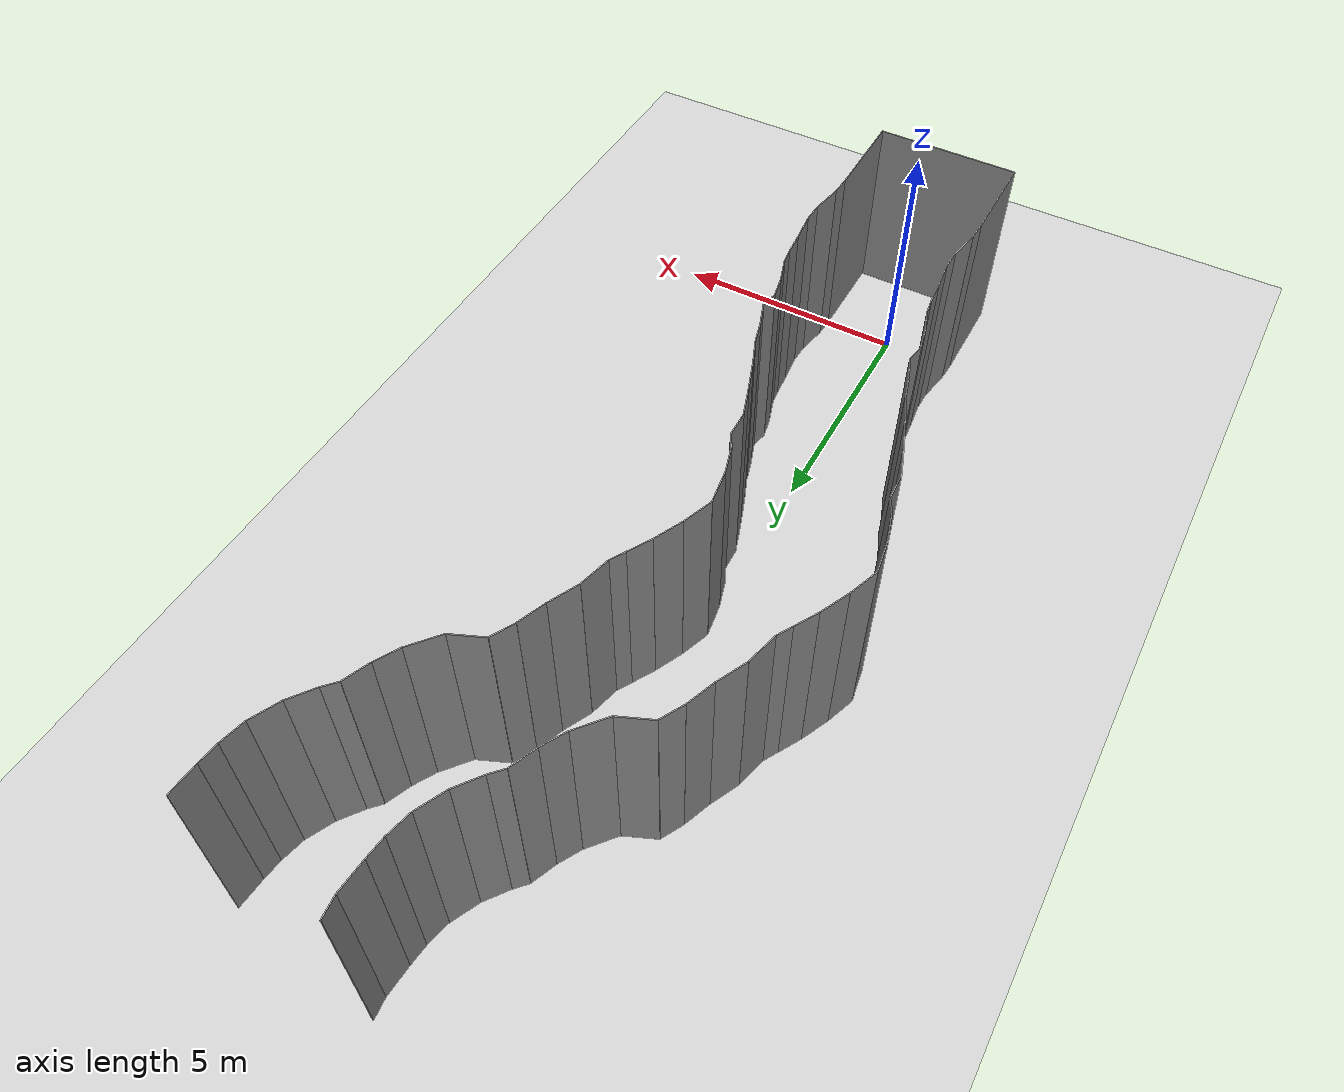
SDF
<sdf version="1.6">
 <world name="default">
  <model name="ground_plane">
   <static>1</static>
   <link name="link">
    <collision name="collision">
     <geometry><plane><normal>0 0 1</normal><size>200 200</size></plane></geometry>
     <surface><friction><ode><mu>100</mu><mu2>50</mu2></ode></friction></surface>
    </collision>
    <visual name="visual">
     <cast_shadows>0</cast_shadows>
     <geometry><plane><normal>0 0 1</normal><size>200 200</size></plane></geometry>
     <material>
      <script><uri>file://media/materials/scripts/gazebo.material</uri><name>Gazebo/Grey</name></script>
     </material>
    </visual>
   </link>
   <pose>0 100 0 0 -0 0</pose>
  </model>
  <model name="wall_back">
   <static>1</static>
   <pose>0.0 -2 2 0.0 0 0.0</pose>
   <link name="link">
    <collision name="collision"><geometry><box><size>3 0.02 4</size></box></geometry></collision>
    <visual name="visual">
     <material>
      <script><name>Gazebo/Grey</name><uri>file://media/materials/scripts/gazebo.material</uri></script>
     </material>
     <geometry><box><size>3 0.02 4</size></box></geometry>
    </visual>
   </link>
  </model>
  <model name="wall_left">
   <static>1</static>
   <pose>1.5 -1 2 0 0 0.00</pose>
   <link name="link">
    <collision name="collision"><geometry><box><size>0.02 2 4</size></box></geometry></collision>
    <visual name="visual">
     <material>
      <script><name>Gazebo/Grey</name><uri>file://media/materials/scripts/gazebo.material</uri></script>
     </material>
     <geometry><box><size>0.02 2 4</size></box></geometry>
    </visual>
   </link>
  </model>
  <model name="wall_right">
   <static>1</static>
   <pose>-1.5 -1 2 0 0 0.00</pose>
   <link name="link">
    <collision name="collision"><geometry><box><size>0.02 2 4</size></box></geometry></collision>
    <visual name="visual">
     <material>
      <script><name>Gazebo/Grey</name><uri>file://media/materials/scripts/gazebo.material</uri></script>
     </material>
     <geometry><box><size>0.02 2 4</size></box></geometry>
    </visual>
   </link>
  </model>
  <model name="wall_0">
   <static>1</static>
   <pose>-1.489518586047968 0.20049732943710094 2 0 0 -0.05222953051110134</pose>
   <link name="link">
    <collision name="collision"><geometry><box><size>0.02 0.401542222686 4</size></box></geometry></collision>
    <visual name="visual">
     <material>
      <script><name>Gazebo/Grey</name><uri>file://media/materials/scripts/gazebo.material</uri></script>
     </material>
     <geometry><box><size>0.02 0.401542222686 4</size></box></geometry>
    </visual>
   </link>
  </model>
  <model name="wall_1">
   <static>1</static>
   <pose>1.510481413952032 0.20049732943710094 2 0 0 -0.05222953051110134</pose>
   <link name="link">
    <collision name="collision"><geometry><box><size>0.02 0.401542222686 4</size></box></geometry></collision>
    <visual name="visual">
     <material>
      <script><name>Gazebo/Grey</name><uri>file://media/materials/scripts/gazebo.material</uri></script>
     </material>
     <geometry><box><size>0.02 0.401542222686 4</size></box></geometry>
    </visual>
   </link>
  </model>
  <model name="wall_2">
   <static>1</static>
   <pose>-1.4214829470044996 0.7288020010732138 2 0 0 -0.17380190108897955</pose>
   <link name="link">
    <collision name="collision"><geometry><box><size>0.02 0.665642974651 4</size></box></geometry></collision>
    <visual name="visual">
     <material>
      <script><name>Gazebo/Grey</name><uri>file://media/materials/scripts/gazebo.material</uri></script>
     </material>
     <geometry><box><size>0.02 0.665642974651 4</size></box></geometry>
    </visual>
   </link>
  </model>
  <model name="wall_3">
   <static>1</static>
   <pose>1.5785170529955004 0.7288020010732138 2 0 0 -0.17380190108897955</pose>
   <link name="link">
    <collision name="collision"><geometry><box><size>0.02 0.665642974651 4</size></box></geometry></collision>
    <visual name="visual">
     <material>
      <script><name>Gazebo/Grey</name><uri>file://media/materials/scripts/gazebo.material</uri></script>
     </material>
     <geometry><box><size>0.02 0.665642974651 4</size></box></geometry>
    </visual>
   </link>
  </model>
  <model name="wall_4">
   <static>1</static>
   <pose>-1.3579543316731462 1.2718780024738132 2 0 0 -0.027746059586998134</pose>
   <link name="link">
    <collision name="collision"><geometry><box><size>0.02 0.430703094826 4</size></box></geometry></collision>
    <visual name="visual">
     <material>
      <script><name>Gazebo/Grey</name><uri>file://media/materials/scripts/gazebo.material</uri></script>
     </material>
     <geometry><box><size>0.02 0.430703094826 4</size></box></geometry>
    </visual>
   </link>
  </model>
  <model name="wall_5">
   <static>1</static>
   <pose>1.6420456683268538 1.2718780024738132 2 0 0 -0.027746059586998134</pose>
   <link name="link">
    <collision name="collision"><geometry><box><size>0.02 0.430703094826 4</size></box></geometry></collision>
    <visual name="visual">
     <material>
      <script><name>Gazebo/Grey</name><uri>file://media/materials/scripts/gazebo.material</uri></script>
     </material>
     <geometry><box><size>0.02 0.430703094826 4</size></box></geometry>
    </visual>
   </link>
  </model>
  <model name="wall_6">
   <static>1</static>
   <pose>-1.3885365490897117 1.8003926404126556 2 0 0 0.11617703816787787</pose>
   <link name="link">
    <collision name="collision"><geometry><box><size>0.02 0.630743779227 4</size></box></geometry></collision>
    <visual name="visual">
     <material>
      <script><name>Gazebo/Grey</name><uri>file://media/materials/scripts/gazebo.material</uri></script>
     </material>
     <geometry><box><size>0.02 0.630743779227 4</size></box></geometry>
    </visual>
   </link>
  </model>
  <model name="wall_7">
   <static>1</static>
   <pose>1.6114634509102883 1.8003926404126556 2 0 0 0.11617703816787787</pose>
   <link name="link">
    <collision name="collision"><geometry><box><size>0.02 0.630743779227 4</size></box></geometry></collision>
    <visual name="visual">
     <material>
      <script><name>Gazebo/Grey</name><uri>file://media/materials/scripts/gazebo.material</uri></script>
     </material>
     <geometry><box><size>0.02 0.630743779227 4</size></box></geometry>
    </visual>
   </link>
  </model>
  <model name="wall_8">
   <static>1</static>
   <pose>-1.4458201575018677 2.353512467075582 2 0 0 0.08619383034046935</pose>
   <link name="link">
    <collision name="collision"><geometry><box><size>0.02 0.481535342333 4</size></box></geometry></collision>
    <visual name="visual">
     <material>
      <script><name>Gazebo/Grey</name><uri>file://media/materials/scripts/gazebo.material</uri></script>
     </material>
     <geometry><box><size>0.02 0.481535342333 4</size></box></geometry>
    </visual>
   </link>
  </model>
  <model name="wall_9">
   <static>1</static>
   <pose>1.5541798424981323 2.353512467075582 2 0 0 0.08619383034046935</pose>
   <link name="link">
    <collision name="collision"><geometry><box><size>0.02 0.481535342333 4</size></box></geometry></collision>
    <visual name="visual">
     <material>
      <script><name>Gazebo/Grey</name><uri>file://media/materials/scripts/gazebo.material</uri></script>
     </material>
     <geometry><box><size>0.02 0.481535342333 4</size></box></geometry>
    </visual>
   </link>
  </model>
  <model name="wall_10">
   <static>1</static>
   <pose>-1.4889563472218057 2.7457335104750245 2 0 0 0.14604560094594113</pose>
   <link name="link">
    <collision name="collision"><geometry><box><size>0.02 0.307972984002 4</size></box></geometry></collision>
    <visual name="visual">
     <material>
      <script><name>Gazebo/Grey</name><uri>file://media/materials/scripts/gazebo.material</uri></script>
     </material>
     <geometry><box><size>0.02 0.307972984002 4</size></box></geometry>
    </visual>
   </link>
  </model>
  <model name="wall_11">
   <static>1</static>
   <pose>1.5110436527781943 2.7457335104750245 2 0 0 0.14604560094594113</pose>
   <link name="link">
    <collision name="collision"><geometry><box><size>0.02 0.307972984002 4</size></box></geometry></collision>
    <visual name="visual">
     <material>
      <script><name>Gazebo/Grey</name><uri>file://media/materials/scripts/gazebo.material</uri></script>
     </material>
     <geometry><box><size>0.02 0.307972984002 4</size></box></geometry>
    </visual>
   </link>
  </model>
  <model name="wall_12">
   <static>1</static>
   <pose>-1.596894082027641 3.158114141264798 2 0 0 0.31776757768315944</pose>
   <link name="link">
    <collision name="collision"><geometry><box><size>0.02 0.547476098605 4</size></box></geometry></collision>
    <visual name="visual">
     <material>
      <script><name>Gazebo/Grey</name><uri>file://media/materials/scripts/gazebo.material</uri></script>
     </material>
     <geometry><box><size>0.02 0.547476098605 4</size></box></geometry>
    </visual>
   </link>
  </model>
  <model name="wall_13">
   <static>1</static>
   <pose>1.403105917972359 3.158114141264798 2 0 0 0.31776757768315944</pose>
   <link name="link">
    <collision name="collision"><geometry><box><size>0.02 0.547476098605 4</size></box></geometry></collision>
    <visual name="visual">
     <material>
      <script><name>Gazebo/Grey</name><uri>file://media/materials/scripts/gazebo.material</uri></script>
     </material>
     <geometry><box><size>0.02 0.547476098605 4</size></box></geometry>
    </visual>
   </link>
  </model>
  <model name="wall_14">
   <static>1</static>
   <pose>-1.729432926856667 3.645361085510085 2 0 0 0.20402054347122936</pose>
   <link name="link">
    <collision name="collision"><geometry><box><size>0.02 0.46405149219 4</size></box></geometry></collision>
    <visual name="visual">
     <material>
      <script><name>Gazebo/Grey</name><uri>file://media/materials/scripts/gazebo.material</uri></script>
     </material>
     <geometry><box><size>0.02 0.46405149219 4</size></box></geometry>
    </visual>
   </link>
  </model>
  <model name="wall_15">
   <static>1</static>
   <pose>1.270567073143333 3.645361085510085 2 0 0 0.20402054347122936</pose>
   <link name="link">
    <collision name="collision"><geometry><box><size>0.02 0.46405149219 4</size></box></geometry></collision>
    <visual name="visual">
     <material>
      <script><name>Gazebo/Grey</name><uri>file://media/materials/scripts/gazebo.material</uri></script>
     </material>
     <geometry><box><size>0.02 0.46405149219 4</size></box></geometry>
    </visual>
   </link>
  </model>
  <model name="wall_16">
   <static>1</static>
   <pose>-1.74293647429722 4.046996853891628 2 0 0 -0.18978929705398656</pose>
   <link name="link">
    <collision name="collision"><geometry><box><size>0.02 0.35522289899 4</size></box></geometry></collision>
    <visual name="visual">
     <material>
      <script><name>Gazebo/Grey</name><uri>file://media/materials/scripts/gazebo.material</uri></script>
     </material>
     <geometry><box><size>0.02 0.35522289899 4</size></box></geometry>
    </visual>
   </link>
  </model>
  <model name="wall_17">
   <static>1</static>
   <pose>1.25706352570278 4.046996853891628 2 0 0 -0.18978929705398656</pose>
   <link name="link">
    <collision name="collision"><geometry><box><size>0.02 0.35522289899 4</size></box></geometry></collision>
    <visual name="visual">
     <material>
      <script><name>Gazebo/Grey</name><uri>file://media/materials/scripts/gazebo.material</uri></script>
     </material>
     <geometry><box><size>0.02 0.35522289899 4</size></box></geometry>
    </visual>
   </link>
  </model>
  <model name="wall_18">
   <static>1</static>
   <pose>-1.803507631129231 4.478444069290012 2 0 0 0.35088025179784704</pose>
   <link name="link">
    <collision name="collision"><geometry><box><size>0.02 0.547402889375 4</size></box></geometry></collision>
    <visual name="visual">
     <material>
      <script><name>Gazebo/Grey</name><uri>file://media/materials/scripts/gazebo.material</uri></script>
     </material>
     <geometry><box><size>0.02 0.547402889375 4</size></box></geometry>
    </visual>
   </link>
  </model>
  <model name="wall_19">
   <static>1</static>
   <pose>1.196492368870769 4.478444069290012 2 0 0 0.35088025179784704</pose>
   <link name="link">
    <collision name="collision"><geometry><box><size>0.02 0.547402889375 4</size></box></geometry></collision>
    <visual name="visual">
     <material>
      <script><name>Gazebo/Grey</name><uri>file://media/materials/scripts/gazebo.material</uri></script>
     </material>
     <geometry><box><size>0.02 0.547402889375 4</size></box></geometry>
    </visual>
   </link>
  </model>
  <model name="wall_20">
   <static>1</static>
   <pose>-1.9574651885111887 4.952137848123724 2 0 0 0.2696346675039881</pose>
   <link name="link">
    <collision name="collision"><geometry><box><size>0.02 0.449581810914 4</size></box></geometry></collision>
    <visual name="visual">
     <material>
      <script><name>Gazebo/Grey</name><uri>file://media/materials/scripts/gazebo.material</uri></script>
     </material>
     <geometry><box><size>0.02 0.449581810914 4</size></box></geometry>
    </visual>
   </link>
  </model>
  <model name="wall_21">
   <static>1</static>
   <pose>1.0425348114888113 4.952137848123724 2 0 0 0.2696346675039881</pose>
   <link name="link">
    <collision name="collision"><geometry><box><size>0.02 0.449581810914 4</size></box></geometry></collision>
    <visual name="visual">
     <material>
      <script><name>Gazebo/Grey</name><uri>file://media/materials/scripts/gazebo.material</uri></script>
     </material>
     <geometry><box><size>0.02 0.449581810914 4</size></box></geometry>
    </visual>
   </link>
  </model>
  <model name="wall_22">
   <static>1</static>
   <pose>-2.1256902756428024 5.43505233538048 2 0 0 0.3864729368121072</pose>
   <link name="link">
    <collision name="collision"><geometry><box><size>0.02 0.574892990942 4</size></box></geometry></collision>
    <visual name="visual">
     <material>
      <script><name>Gazebo/Grey</name><uri>file://media/materials/scripts/gazebo.material</uri></script>
     </material>
     <geometry><box><size>0.02 0.574892990942 4</size></box></geometry>
    </visual>
   </link>
  </model>
  <model name="wall_23">
   <static>1</static>
   <pose>0.8743097243571976 5.43505233538048 2 0 0 0.3864729368121072</pose>
   <link name="link">
    <collision name="collision"><geometry><box><size>0.02 0.574892990942 4</size></box></geometry></collision>
    <visual name="visual">
     <material>
      <script><name>Gazebo/Grey</name><uri>file://media/materials/scripts/gazebo.material</uri></script>
     </material>
     <geometry><box><size>0.02 0.574892990942 4</size></box></geometry>
    </visual>
   </link>
  </model>
  <model name="wall_24">
   <static>1</static>
   <pose>-2.3471178421616776 6.0121453797528535 2 0 0 0.3489037357054069</pose>
   <link name="link">
    <collision name="collision"><geometry><box><size>0.02 0.661554718572 4</size></box></geometry></collision>
    <visual name="visual">
     <material>
      <script><name>Gazebo/Grey</name><uri>file://media/materials/scripts/gazebo.material</uri></script>
     </material>
     <geometry><box><size>0.02 0.661554718572 4</size></box></geometry>
    </visual>
   </link>
  </model>
  <model name="wall_25">
   <static>1</static>
   <pose>0.6528821578383224 6.0121453797528535 2 0 0 0.3489037357054069</pose>
   <link name="link">
    <collision name="collision"><geometry><box><size>0.02 0.661554718572 4</size></box></geometry></collision>
    <visual name="visual">
     <material>
      <script><name>Gazebo/Grey</name><uri>file://media/materials/scripts/gazebo.material</uri></script>
     </material>
     <geometry><box><size>0.02 0.661554718572 4</size></box></geometry>
    </visual>
   </link>
  </model>
  <model name="wall_26">
   <static>1</static>
   <pose>-2.5667578166942926 6.63271991162041 2 0 0 0.3313534349744455</pose>
   <link name="link">
    <collision name="collision"><geometry><box><size>0.02 0.655089255526 4</size></box></geometry></collision>
    <visual name="visual">
     <material>
      <script><name>Gazebo/Grey</name><uri>file://media/materials/scripts/gazebo.material</uri></script>
     </material>
     <geometry><box><size>0.02 0.655089255526 4</size></box></geometry>
    </visual>
   </link>
  </model>
  <model name="wall_27">
   <static>1</static>
   <pose>0.4332421833057074 6.63271991162041 2 0 0 0.3313534349744455</pose>
   <link name="link">
    <collision name="collision"><geometry><box><size>0.02 0.655089255526 4</size></box></geometry></collision>
    <visual name="visual">
     <material>
      <script><name>Gazebo/Grey</name><uri>file://media/materials/scripts/gazebo.material</uri></script>
     </material>
     <geometry><box><size>0.02 0.655089255526 4</size></box></geometry>
    </visual>
   </link>
  </model>
  <model name="wall_28">
   <static>1</static>
   <pose>-2.6817052931690473 7.202625932338233 2 0 0 0.032234456207765</pose>
   <link name="link">
    <collision name="collision"><geometry><box><size>0.02 0.520628196297 4</size></box></geometry></collision>
    <visual name="visual">
     <material>
      <script><name>Gazebo/Grey</name><uri>file://media/materials/scripts/gazebo.material</uri></script>
     </material>
     <geometry><box><size>0.02 0.520628196297 4</size></box></geometry>
    </visual>
   </link>
  </model>
  <model name="wall_29">
   <static>1</static>
   <pose>0.31829470683095273 7.202625932338233 2 0 0 0.032234456207765</pose>
   <link name="link">
    <collision name="collision"><geometry><box><size>0.02 0.520628196297 4</size></box></geometry></collision>
    <visual name="visual">
     <material>
      <script><name>Gazebo/Grey</name><uri>file://media/materials/scripts/gazebo.material</uri></script>
     </material>
     <geometry><box><size>0.02 0.520628196297 4</size></box></geometry>
    </visual>
   </link>
  </model>
  <model name="wall_30">
   <static>1</static>
   <pose>-2.768281006672819 7.602706860975515 2 0 0 0.5096223330162535</pose>
   <link name="link">
    <collision name="collision"><geometry><box><size>0.02 0.320534865083 4</size></box></geometry></collision>
    <visual name="visual">
     <material>
      <script><name>Gazebo/Grey</name><uri>file://media/materials/scripts/gazebo.material</uri></script>
     </material>
     <geometry><box><size>0.02 0.320534865083 4</size></box></geometry>
    </visual>
   </link>
  </model>
  <model name="wall_31">
   <static>1</static>
   <pose>0.23171899332718082 7.602706860975515 2 0 0 0.5096223330162535</pose>
   <link name="link">
    <collision name="collision"><geometry><box><size>0.02 0.320534865083 4</size></box></geometry></collision>
    <visual name="visual">
     <material>
      <script><name>Gazebo/Grey</name><uri>file://media/materials/scripts/gazebo.material</uri></script>
     </material>
     <geometry><box><size>0.02 0.320534865083 4</size></box></geometry>
    </visual>
   </link>
  </model>
  <model name="wall_32">
   <static>1</static>
   <pose>-2.9284501335781075 8.01551304571727 2 0 0 0.29183261499156843</pose>
   <link name="link">
    <collision name="collision"><geometry><box><size>0.02 0.569904837245 4</size></box></geometry></collision>
    <visual name="visual">
     <material>
      <script><name>Gazebo/Grey</name><uri>file://media/materials/scripts/gazebo.material</uri></script>
     </material>
     <geometry><box><size>0.02 0.569904837245 4</size></box></geometry>
    </visual>
   </link>
  </model>
  <model name="wall_33">
   <static>1</static>
   <pose>0.07154986642189254 8.01551304571727 2 0 0 0.29183261499156843</pose>
   <link name="link">
    <collision name="collision"><geometry><box><size>0.02 0.569904837245 4</size></box></geometry></collision>
    <visual name="visual">
     <material>
      <script><name>Gazebo/Grey</name><uri>file://media/materials/scripts/gazebo.material</uri></script>
     </material>
     <geometry><box><size>0.02 0.569904837245 4</size></box></geometry>
    </visual>
   </link>
  </model>
  <model name="wall_34">
   <static>1</static>
   <pose>-3.0642480951425792 8.63425046036749 2 0 0 0.15437136792551523</pose>
   <link name="link">
    <collision name="collision"><geometry><box><size>0.02 0.69999059891 4</size></box></geometry></collision>
    <visual name="visual">
     <material>
      <script><name>Gazebo/Grey</name><uri>file://media/materials/scripts/gazebo.material</uri></script>
     </material>
     <geometry><box><size>0.02 0.69999059891 4</size></box></geometry>
    </visual>
   </link>
  </model>
  <model name="wall_35">
   <static>1</static>
   <pose>-0.06424809514257923 8.63425046036749 2 0 0 0.15437136792551523</pose>
   <link name="link">
    <collision name="collision"><geometry><box><size>0.02 0.69999059891 4</size></box></geometry></collision>
    <visual name="visual">
     <material>
      <script><name>Gazebo/Grey</name><uri>file://media/materials/scripts/gazebo.material</uri></script>
     </material>
     <geometry><box><size>0.02 0.69999059891 4</size></box></geometry>
    </visual>
   </link>
  </model>
  <model name="wall_36">
   <static>1</static>
   <pose>-3.010063837320274 9.277765566784698 2 0 0 -0.34803275006501383</pose>
   <link name="link">
    <collision name="collision"><geometry><box><size>0.02 0.633334938087 4</size></box></geometry></collision>
    <visual name="visual">
     <material>
      <script><name>Gazebo/Grey</name><uri>file://media/materials/scripts/gazebo.material</uri></script>
     </material>
     <geometry><box><size>0.02 0.633334938087 4</size></box></geometry>
    </visual>
   </link>
  </model>
  <model name="wall_37">
   <static>1</static>
   <pose>-0.01006383732027416 9.277765566784698 2 0 0 -0.34803275006501383</pose>
   <link name="link">
    <collision name="collision"><geometry><box><size>0.02 0.633334938087 4</size></box></geometry></collision>
    <visual name="visual">
     <material>
      <script><name>Gazebo/Grey</name><uri>file://media/materials/scripts/gazebo.material</uri></script>
     </material>
     <geometry><box><size>0.02 0.633334938087 4</size></box></geometry>
    </visual>
   </link>
  </model>
  <model name="wall_38">
   <static>1</static>
   <pose>-2.7705077600563 9.858821510863308 2 0 0 -0.4346421779830581</pose>
   <link name="link">
    <collision name="collision"><geometry><box><size>0.02 0.624845947142 4</size></box></geometry></collision>
    <visual name="visual">
     <material>
      <script><name>Gazebo/Grey</name><uri>file://media/materials/scripts/gazebo.material</uri></script>
     </material>
     <geometry><box><size>0.02 0.624845947142 4</size></box></geometry>
    </visual>
   </link>
  </model>
  <model name="wall_39">
   <static>1</static>
   <pose>0.22949223994370005 9.858821510863308 2 0 0 -0.4346421779830581</pose>
   <link name="link">
    <collision name="collision"><geometry><box><size>0.02 0.624845947142 4</size></box></geometry></collision>
    <visual name="visual">
     <material>
      <script><name>Gazebo/Grey</name><uri>file://media/materials/scripts/gazebo.material</uri></script>
     </material>
     <geometry><box><size>0.02 0.624845947142 4</size></box></geometry>
    </visual>
   </link>
  </model>
  <model name="wall_40">
   <static>1</static>
   <pose>-2.514608879797339 10.361208416488681 2 0 0 -0.5163599203486481</pose>
   <link name="link">
    <collision name="collision"><geometry><box><size>0.02 0.503696435168 4</size></box></geometry></collision>
    <visual name="visual">
     <material>
      <script><name>Gazebo/Grey</name><uri>file://media/materials/scripts/gazebo.material</uri></script>
     </material>
     <geometry><box><size>0.02 0.503696435168 4</size></box></geometry>
    </visual>
   </link>
  </model>
  <model name="wall_41">
   <static>1</static>
   <pose>0.48539112020266106 10.361208416488681 2 0 0 -0.5163599203486481</pose>
   <link name="link">
    <collision name="collision"><geometry><box><size>0.02 0.503696435168 4</size></box></geometry></collision>
    <visual name="visual">
     <material>
      <script><name>Gazebo/Grey</name><uri>file://media/materials/scripts/gazebo.material</uri></script>
     </material>
     <geometry><box><size>0.02 0.503696435168 4</size></box></geometry>
    </visual>
   </link>
  </model>
  <model name="wall_42">
   <static>1</static>
   <pose>-2.309268981880272 10.722486312490199 2 0 0 -0.5175739369132143</pose>
   <link name="link">
    <collision name="collision"><geometry><box><size>0.02 0.327414273657 4</size></box></geometry></collision>
    <visual name="visual">
     <material>
      <script><name>Gazebo/Grey</name><uri>file://media/materials/scripts/gazebo.material</uri></script>
     </material>
     <geometry><box><size>0.02 0.327414273657 4</size></box></geometry>
    </visual>
   </link>
  </model>
  <model name="wall_43">
   <static>1</static>
   <pose>0.6907310181197279 10.722486312490199 2 0 0 -0.5175739369132143</pose>
   <link name="link">
    <collision name="collision"><geometry><box><size>0.02 0.327414273657 4</size></box></geometry></collision>
    <visual name="visual">
     <material>
      <script><name>Gazebo/Grey</name><uri>file://media/materials/scripts/gazebo.material</uri></script>
     </material>
     <geometry><box><size>0.02 0.327414273657 4</size></box></geometry>
    </visual>
   </link>
  </model>
  <model name="wall_44">
   <static>1</static>
   <pose>-2.151062313754524 11.17653106160025 2 0 0 -0.24275517112561143</pose>
   <link name="link">
    <collision name="collision"><geometry><box><size>0.02 0.64239467446 4</size></box></geometry></collision>
    <visual name="visual">
     <material>
      <script><name>Gazebo/Grey</name><uri>file://media/materials/scripts/gazebo.material</uri></script>
     </material>
     <geometry><box><size>0.02 0.64239467446 4</size></box></geometry>
    </visual>
   </link>
  </model>
  <model name="wall_45">
   <static>1</static>
   <pose>0.8489376862454758 11.17653106160025 2 0 0 -0.24275517112561143</pose>
   <link name="link">
    <collision name="collision"><geometry><box><size>0.02 0.64239467446 4</size></box></geometry></collision>
    <visual name="visual">
     <material>
      <script><name>Gazebo/Grey</name><uri>file://media/materials/scripts/gazebo.material</uri></script>
     </material>
     <geometry><box><size>0.02 0.64239467446 4</size></box></geometry>
    </visual>
   </link>
  </model>
  <model name="wall_46">
   <static>1</static>
   <pose>-1.936993852102987 11.77434045904762 2 0 0 -0.44628441364280985</pose>
   <link name="link">
    <collision name="collision"><geometry><box><size>0.02 0.634172241785 4</size></box></geometry></collision>
    <visual name="visual">
     <material>
      <script><name>Gazebo/Grey</name><uri>file://media/materials/scripts/gazebo.material</uri></script>
     </material>
     <geometry><box><size>0.02 0.634172241785 4</size></box></geometry>
    </visual>
   </link>
  </model>
  <model name="wall_47">
   <static>1</static>
   <pose>1.063006147897013 11.77434045904762 2 0 0 -0.44628441364280985</pose>
   <link name="link">
    <collision name="collision"><geometry><box><size>0.02 0.634172241785 4</size></box></geometry></collision>
    <visual name="visual">
     <material>
      <script><name>Gazebo/Grey</name><uri>file://media/materials/scripts/gazebo.material</uri></script>
     </material>
     <geometry><box><size>0.02 0.634172241785 4</size></box></geometry>
    </visual>
   </link>
  </model>
  <model name="wall_48">
   <static>1</static>
   <pose>-1.697552183234039 12.331902202936323 2 0 0 -0.36121409726074083</pose>
   <link name="link">
    <collision name="collision"><geometry><box><size>0.02 0.580526218845 4</size></box></geometry></collision>
    <visual name="visual">
     <material>
      <script><name>Gazebo/Grey</name><uri>file://media/materials/scripts/gazebo.material</uri></script>
     </material>
     <geometry><box><size>0.02 0.580526218845 4</size></box></geometry>
    </visual>
   </link>
  </model>
  <model name="wall_49">
   <static>1</static>
   <pose>1.302447816765961 12.331902202936323 2 0 0 -0.36121409726074083</pose>
   <link name="link">
    <collision name="collision"><geometry><box><size>0.02 0.580526218845 4</size></box></geometry></collision>
    <visual name="visual">
     <material>
      <script><name>Gazebo/Grey</name><uri>file://media/materials/scripts/gazebo.material</uri></script>
     </material>
     <geometry><box><size>0.02 0.580526218845 4</size></box></geometry>
    </visual>
   </link>
  </model>
  <model name="wall_50">
   <static>1</static>
   <pose>-1.4797514190591698 12.819096526967375 2 0 0 -0.4906750498373535</pose>
   <link name="link">
    <collision name="collision"><geometry><box><size>0.02 0.489021968066 4</size></box></geometry></collision>
    <visual name="visual">
     <material>
      <script><name>Gazebo/Grey</name><uri>file://media/materials/scripts/gazebo.material</uri></script>
     </material>
     <geometry><box><size>0.02 0.489021968066 4</size></box></geometry>
    </visual>
   </link>
  </model>
  <model name="wall_51">
   <static>1</static>
   <pose>1.5202485809408302 12.819096526967375 2 0 0 -0.4906750498373535</pose>
   <link name="link">
    <collision name="collision"><geometry><box><size>0.02 0.489021968066 4</size></box></geometry></collision>
    <visual name="visual">
     <material>
      <script><name>Gazebo/Grey</name><uri>file://media/materials/scripts/gazebo.material</uri></script>
     </material>
     <geometry><box><size>0.02 0.489021968066 4</size></box></geometry>
    </visual>
   </link>
  </model>
  <model name="wall_52">
   <static>1</static>
   <pose>-1.0564365355146577 13.167485831337268 2 0 0 -1.1640255774593515</pose>
   <link name="link">
    <collision name="collision"><geometry><box><size>0.02 0.670938557921 4</size></box></geometry></collision>
    <visual name="visual">
     <material>
      <script><name>Gazebo/Grey</name><uri>file://media/materials/scripts/gazebo.material</uri></script>
     </material>
     <geometry><box><size>0.02 0.670938557921 4</size></box></geometry>
    </visual>
   </link>
  </model>
  <model name="wall_53">
   <static>1</static>
   <pose>1.9435634644853423 13.167485831337268 2 0 0 -1.1640255774593515</pose>
   <link name="link">
    <collision name="collision"><geometry><box><size>0.02 0.670938557921 4</size></box></geometry></collision>
    <visual name="visual">
     <material>
      <script><name>Gazebo/Grey</name><uri>file://media/materials/scripts/gazebo.material</uri></script>
     </material>
     <geometry><box><size>0.02 0.670938557921 4</size></box></geometry>
    </visual>
   </link>
  </model>
  <model name="wall_54">
   <static>1</static>
   <pose>-0.5287862599145199 13.564390611673788 2 0 0 -0.693409866530334</pose>
   <link name="link">
    <collision name="collision"><geometry><box><size>0.02 0.687005002998 4</size></box></geometry></collision>
    <visual name="visual">
     <material>
      <script><name>Gazebo/Grey</name><uri>file://media/materials/scripts/gazebo.material</uri></script>
     </material>
     <geometry><box><size>0.02 0.687005002998 4</size></box></geometry>
    </visual>
   </link>
  </model>
  <model name="wall_55">
   <static>1</static>
   <pose>2.47121374008548 13.564390611673788 2 0 0 -0.693409866530334</pose>
   <link name="link">
    <collision name="collision"><geometry><box><size>0.02 0.687005002998 4</size></box></geometry></collision>
    <visual name="visual">
     <material>
      <script><name>Gazebo/Grey</name><uri>file://media/materials/scripts/gazebo.material</uri></script>
     </material>
     <geometry><box><size>0.02 0.687005002998 4</size></box></geometry>
    </visual>
   </link>
  </model>
  <model name="wall_56">
   <static>1</static>
   <pose>-0.18669444980762256 14.049349786628886 2 0 0 -0.506687585451164</pose>
   <link name="link">
    <collision name="collision"><geometry><box><size>0.02 0.505014342716 4</size></box></geometry></collision>
    <visual name="visual">
     <material>
      <script><name>Gazebo/Grey</name><uri>file://media/materials/scripts/gazebo.material</uri></script>
     </material>
     <geometry><box><size>0.02 0.505014342716 4</size></box></geometry>
    </visual>
   </link>
  </model>
  <model name="wall_57">
   <static>1</static>
   <pose>2.8133055501923776 14.049349786628886 2 0 0 -0.506687585451164</pose>
   <link name="link">
    <collision name="collision"><geometry><box><size>0.02 0.505014342716 4</size></box></geometry></collision>
    <visual name="visual">
     <material>
      <script><name>Gazebo/Grey</name><uri>file://media/materials/scripts/gazebo.material</uri></script>
     </material>
     <geometry><box><size>0.02 0.505014342716 4</size></box></geometry>
    </visual>
   </link>
  </model>
  <model name="wall_58">
   <static>1</static>
   <pose>0.03686490835968653 14.519948339182639 2 0 0 -0.38427882856072476</pose>
   <link name="link">
    <collision name="collision"><geometry><box><size>0.02 0.538939799666 4</size></box></geometry></collision>
    <visual name="visual">
     <material>
      <script><name>Gazebo/Grey</name><uri>file://media/materials/scripts/gazebo.material</uri></script>
     </material>
     <geometry><box><size>0.02 0.538939799666 4</size></box></geometry>
    </visual>
   </link>
  </model>
  <model name="wall_59">
   <static>1</static>
   <pose>3.0368649083596866 14.519948339182639 2 0 0 -0.38427882856072476</pose>
   <link name="link">
    <collision name="collision"><geometry><box><size>0.02 0.538939799666 4</size></box></geometry></collision>
    <visual name="visual">
     <material>
      <script><name>Gazebo/Grey</name><uri>file://media/materials/scripts/gazebo.material</uri></script>
     </material>
     <geometry><box><size>0.02 0.538939799666 4</size></box></geometry>
    </visual>
   </link>
  </model>
  <model name="wall_60">
   <static>1</static>
   <pose>0.24548544720612056 14.884622924058446 2 0 0 -0.7527804125848092</pose>
   <link name="link">
    <collision name="collision"><geometry><box><size>0.02 0.314767969509 4</size></box></geometry></collision>
    <visual name="visual">
     <material>
      <script><name>Gazebo/Grey</name><uri>file://media/materials/scripts/gazebo.material</uri></script>
     </material>
     <geometry><box><size>0.02 0.314767969509 4</size></box></geometry>
    </visual>
   </link>
  </model>
  <model name="wall_61">
   <static>1</static>
   <pose>3.2454854472061205 14.884622924058446 2 0 0 -0.7527804125848092</pose>
   <link name="link">
    <collision name="collision"><geometry><box><size>0.02 0.314767969509 4</size></box></geometry></collision>
    <visual name="visual">
     <material>
      <script><name>Gazebo/Grey</name><uri>file://media/materials/scripts/gazebo.material</uri></script>
     </material>
     <geometry><box><size>0.02 0.314767969509 4</size></box></geometry>
    </visual>
   </link>
  </model>
  <model name="wall_62">
   <static>1</static>
   <pose>0.5168916326630328 15.220959239860585 2 0 0 -0.6368164197256273</pose>
   <link name="link">
    <collision name="collision"><geometry><box><size>0.02 0.550947472432 4</size></box></geometry></collision>
    <visual name="visual">
     <material>
      <script><name>Gazebo/Grey</name><uri>file://media/materials/scripts/gazebo.material</uri></script>
     </material>
     <geometry><box><size>0.02 0.550947472432 4</size></box></geometry>
    </visual>
   </link>
  </model>
  <model name="wall_63">
   <static>1</static>
   <pose>3.516891632663033 15.220959239860585 2 0 0 -0.6368164197256273</pose>
   <link name="link">
    <collision name="collision"><geometry><box><size>0.02 0.550947472432 4</size></box></geometry></collision>
    <visual name="visual">
     <material>
      <script><name>Gazebo/Grey</name><uri>file://media/materials/scripts/gazebo.material</uri></script>
     </material>
     <geometry><box><size>0.02 0.550947472432 4</size></box></geometry>
    </visual>
   </link>
  </model>
  <model name="wall_64">
   <static>1</static>
   <pose>0.8074883862494832 15.71108306155679 2 0 0 -0.44096418405069815</pose>
   <link name="link">
    <collision name="collision"><geometry><box><size>0.02 0.594123283342 4</size></box></geometry></collision>
    <visual name="visual">
     <material>
      <script><name>Gazebo/Grey</name><uri>file://media/materials/scripts/gazebo.material</uri></script>
     </material>
     <geometry><box><size>0.02 0.594123283342 4</size></box></geometry>
    </visual>
   </link>
  </model>
  <model name="wall_65">
   <static>1</static>
   <pose>3.8074883862494833 15.71108306155679 2 0 0 -0.44096418405069815</pose>
   <link name="link">
    <collision name="collision"><geometry><box><size>0.02 0.594123283342 4</size></box></geometry></collision>
    <visual name="visual">
     <material>
      <script><name>Gazebo/Grey</name><uri>file://media/materials/scripts/gazebo.material</uri></script>
     </material>
     <geometry><box><size>0.02 0.594123283342 4</size></box></geometry>
    </visual>
   </link>
  </model>
  <model name="wall_66">
   <static>1</static>
   <pose>0.9870611869444803 16.221256488551138 2 0 0 -0.2151564734587573</pose>
   <link name="link">
    <collision name="collision"><geometry><box><size>0.02 0.494457785638 4</size></box></geometry></collision>
    <visual name="visual">
     <material>
      <script><name>Gazebo/Grey</name><uri>file://media/materials/scripts/gazebo.material</uri></script>
     </material>
     <geometry><box><size>0.02 0.494457785638 4</size></box></geometry>
    </visual>
   </link>
  </model>
  <model name="wall_67">
   <static>1</static>
   <pose>3.98706118694448 16.221256488551138 2 0 0 -0.2151564734587573</pose>
   <link name="link">
    <collision name="collision"><geometry><box><size>0.02 0.494457785638 4</size></box></geometry></collision>
    <visual name="visual">
     <material>
      <script><name>Gazebo/Grey</name><uri>file://media/materials/scripts/gazebo.material</uri></script>
     </material>
     <geometry><box><size>0.02 0.494457785638 4</size></box></geometry>
    </visual>
   </link>
  </model>
  <model name="wall_68">
   <static>1</static>
   <pose>1.060250691287032 16.66250870103368 2 0 0 -0.10181816123662218</pose>
   <link name="link">
    <collision name="collision"><geometry><box><size>0.02 0.401526857537 4</size></box></geometry></collision>
    <visual name="visual">
     <material>
      <script><name>Gazebo/Grey</name><uri>file://media/materials/scripts/gazebo.material</uri></script>
     </material>
     <geometry><box><size>0.02 0.401526857537 4</size></box></geometry>
    </visual>
   </link>
  </model>
  <model name="wall_69">
   <static>1</static>
   <pose>4.060250691287032 16.66250870103368 2 0 0 -0.10181816123662218</pose>
   <link name="link">
    <collision name="collision"><geometry><box><size>0.02 0.401526857537 4</size></box></geometry></collision>
    <visual name="visual">
     <material>
      <script><name>Gazebo/Grey</name><uri>file://media/materials/scripts/gazebo.material</uri></script>
     </material>
     <geometry><box><size>0.02 0.401526857537 4</size></box></geometry>
    </visual>
   </link>
  </model>
  <model name="wall_70">
   <static>1</static>
   <pose>1.0986224788151837 17.157962579322703 2 0 0 -0.06067581981791525</pose>
   <link name="link">
    <collision name="collision"><geometry><box><size>0.02 0.592550823269 4</size></box></geometry></collision>
    <visual name="visual">
     <material>
      <script><name>Gazebo/Grey</name><uri>file://media/materials/scripts/gazebo.material</uri></script>
     </material>
     <geometry><box><size>0.02 0.592550823269 4</size></box></geometry>
    </visual>
   </link>
  </model>
  <model name="wall_71">
   <static>1</static>
   <pose>4.098622478815184 17.157962579322703 2 0 0 -0.06067581981791525</pose>
   <link name="link">
    <collision name="collision"><geometry><box><size>0.02 0.592550823269 4</size></box></geometry></collision>
    <visual name="visual">
     <material>
      <script><name>Gazebo/Grey</name><uri>file://media/materials/scripts/gazebo.material</uri></script>
     </material>
     <geometry><box><size>0.02 0.592550823269 4</size></box></geometry>
    </visual>
   </link>
  </model>
  <model name="wall_72">
   <static>1</static>
   <pose>1.0926212826150334 17.648242752760275 2 0 0 0.12257401669416847</pose>
   <link name="link">
    <collision name="collision"><geometry><box><size>0.02 0.392041348736 4</size></box></geometry></collision>
    <visual name="visual">
     <material>
      <script><name>Gazebo/Grey</name><uri>file://media/materials/scripts/gazebo.material</uri></script>
     </material>
     <geometry><box><size>0.02 0.392041348736 4</size></box></geometry>
    </visual>
   </link>
  </model>
 </world>
</sdf>
